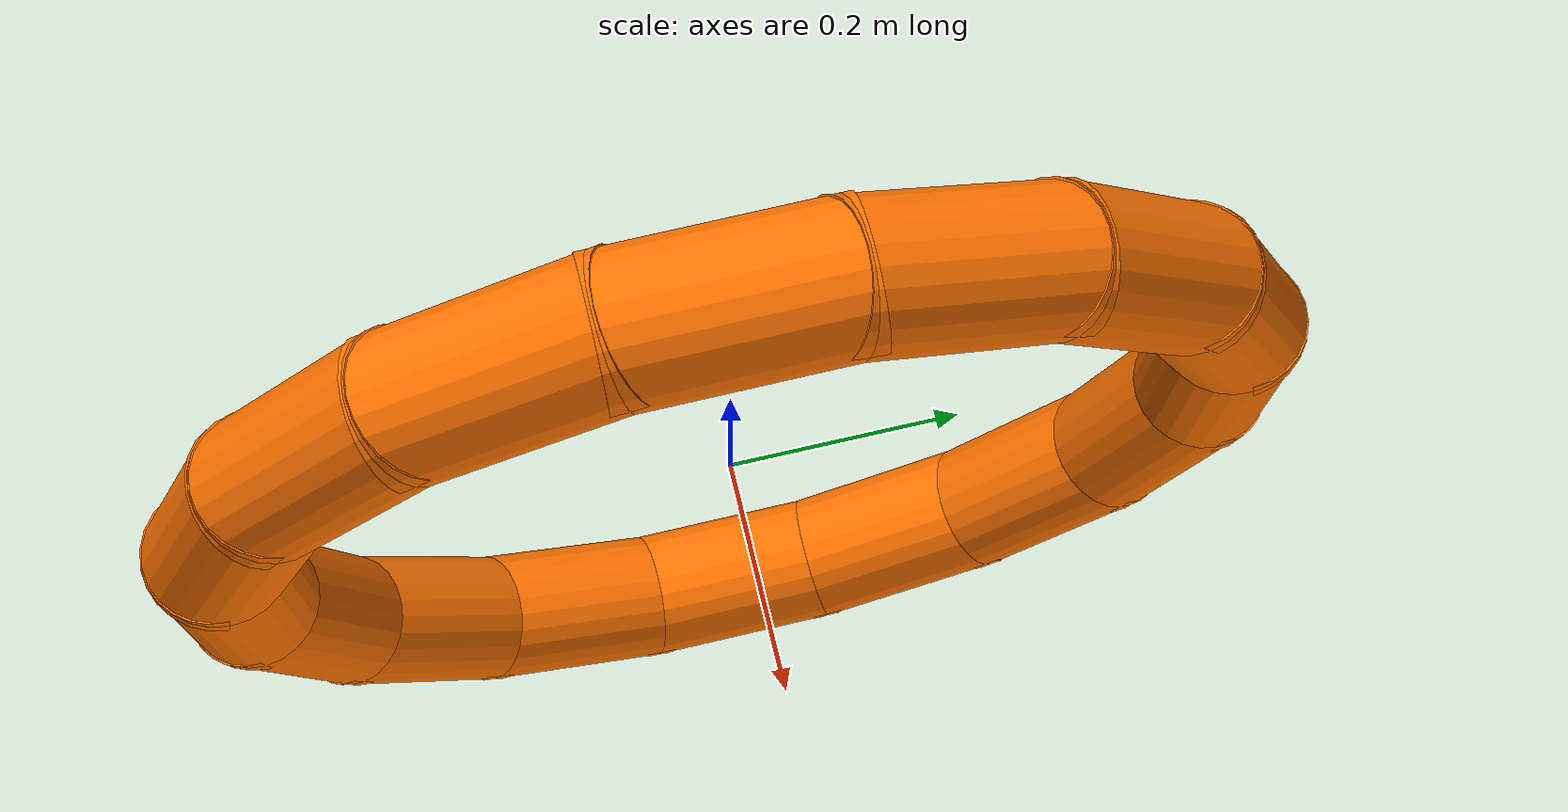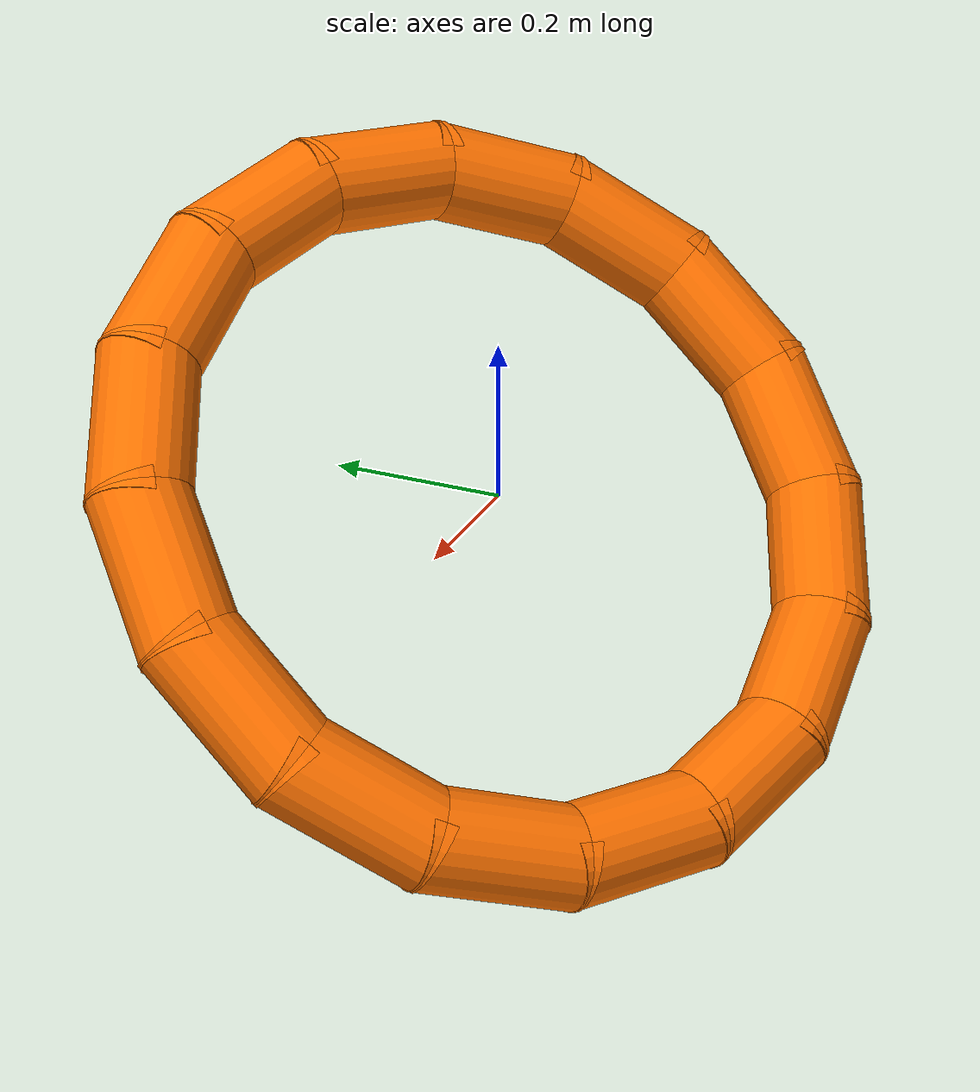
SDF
<?xml version="1.0" ?>
<sdf version="1.9">
  <model name="gate_ring">
    <static>true</static>
    <link name="ring">
      <visual name="seg_0">
        <pose>0 0.4310 0.0000 0.0000 0 0</pose>
        <geometry><cylinder><radius>0.06</radius><length>0.20</length></cylinder></geometry>
        <material><ambient>1 0.45 0 1</ambient><diffuse>1 0.45 0 1</diffuse><emissive>1 0.45 0 1</emissive></material>
      </visual>
      <collision name="seg_0_collision">
        <pose>0 0.4310 0.0000 0.0000 0 0</pose>
        <geometry><cylinder><radius>0.06</radius><length>0.20</length></cylinder></geometry>
      </collision>
      <visual name="seg_1">
        <pose>0 0.3982 0.1649 0.3927 0 0</pose>
        <geometry><cylinder><radius>0.06</radius><length>0.20</length></cylinder></geometry>
        <material><ambient>1 0.45 0 1</ambient><diffuse>1 0.45 0 1</diffuse><emissive>1 0.45 0 1</emissive></material>
      </visual>
      <collision name="seg_1_collision">
        <pose>0 0.3982 0.1649 0.3927 0 0</pose>
        <geometry><cylinder><radius>0.06</radius><length>0.20</length></cylinder></geometry>
      </collision>
      <visual name="seg_2">
        <pose>0 0.3048 0.3048 0.7854 0 0</pose>
        <geometry><cylinder><radius>0.06</radius><length>0.20</length></cylinder></geometry>
        <material><ambient>1 0.45 0 1</ambient><diffuse>1 0.45 0 1</diffuse><emissive>1 0.45 0 1</emissive></material>
      </visual>
      <collision name="seg_2_collision">
        <pose>0 0.3048 0.3048 0.7854 0 0</pose>
        <geometry><cylinder><radius>0.06</radius><length>0.20</length></cylinder></geometry>
      </collision>
      <visual name="seg_3">
        <pose>0 0.1649 0.3982 1.1781 0 0</pose>
        <geometry><cylinder><radius>0.06</radius><length>0.20</length></cylinder></geometry>
        <material><ambient>1 0.45 0 1</ambient><diffuse>1 0.45 0 1</diffuse><emissive>1 0.45 0 1</emissive></material>
      </visual>
      <collision name="seg_3_collision">
        <pose>0 0.1649 0.3982 1.1781 0 0</pose>
        <geometry><cylinder><radius>0.06</radius><length>0.20</length></cylinder></geometry>
      </collision>
      <visual name="seg_4">
        <pose>0 0.0000 0.4310 1.5708 0 0</pose>
        <geometry><cylinder><radius>0.06</radius><length>0.20</length></cylinder></geometry>
        <material><ambient>1 0.45 0 1</ambient><diffuse>1 0.45 0 1</diffuse><emissive>1 0.45 0 1</emissive></material>
      </visual>
      <collision name="seg_4_collision">
        <pose>0 0.0000 0.4310 1.5708 0 0</pose>
        <geometry><cylinder><radius>0.06</radius><length>0.20</length></cylinder></geometry>
      </collision>
      <visual name="seg_5">
        <pose>0 -0.1649 0.3982 1.9635 0 0</pose>
        <geometry><cylinder><radius>0.06</radius><length>0.20</length></cylinder></geometry>
        <material><ambient>1 0.45 0 1</ambient><diffuse>1 0.45 0 1</diffuse><emissive>1 0.45 0 1</emissive></material>
      </visual>
      <collision name="seg_5_collision">
        <pose>0 -0.1649 0.3982 1.9635 0 0</pose>
        <geometry><cylinder><radius>0.06</radius><length>0.20</length></cylinder></geometry>
      </collision>
      <visual name="seg_6">
        <pose>0 -0.3048 0.3048 2.3562 0 0</pose>
        <geometry><cylinder><radius>0.06</radius><length>0.20</length></cylinder></geometry>
        <material><ambient>1 0.45 0 1</ambient><diffuse>1 0.45 0 1</diffuse><emissive>1 0.45 0 1</emissive></material>
      </visual>
      <collision name="seg_6_collision">
        <pose>0 -0.3048 0.3048 2.3562 0 0</pose>
        <geometry><cylinder><radius>0.06</radius><length>0.20</length></cylinder></geometry>
      </collision>
      <visual name="seg_7">
        <pose>0 -0.3982 0.1649 2.7489 0 0</pose>
        <geometry><cylinder><radius>0.06</radius><length>0.20</length></cylinder></geometry>
        <material><ambient>1 0.45 0 1</ambient><diffuse>1 0.45 0 1</diffuse><emissive>1 0.45 0 1</emissive></material>
      </visual>
      <collision name="seg_7_collision">
        <pose>0 -0.3982 0.1649 2.7489 0 0</pose>
        <geometry><cylinder><radius>0.06</radius><length>0.20</length></cylinder></geometry>
      </collision>
      <visual name="seg_8">
        <pose>0 -0.4310 0.0000 3.1416 0 0</pose>
        <geometry><cylinder><radius>0.06</radius><length>0.20</length></cylinder></geometry>
        <material><ambient>1 0.45 0 1</ambient><diffuse>1 0.45 0 1</diffuse><emissive>1 0.45 0 1</emissive></material>
      </visual>
      <collision name="seg_8_collision">
        <pose>0 -0.4310 0.0000 3.1416 0 0</pose>
        <geometry><cylinder><radius>0.06</radius><length>0.20</length></cylinder></geometry>
      </collision>
      <visual name="seg_9">
        <pose>0 -0.3982 -0.1649 3.5343 0 0</pose>
        <geometry><cylinder><radius>0.06</radius><length>0.20</length></cylinder></geometry>
        <material><ambient>1 0.45 0 1</ambient><diffuse>1 0.45 0 1</diffuse><emissive>1 0.45 0 1</emissive></material>
      </visual>
      <collision name="seg_9_collision">
        <pose>0 -0.3982 -0.1649 3.5343 0 0</pose>
        <geometry><cylinder><radius>0.06</radius><length>0.20</length></cylinder></geometry>
      </collision>
      <visual name="seg_10">
        <pose>0 -0.3048 -0.3048 3.9270 0 0</pose>
        <geometry><cylinder><radius>0.06</radius><length>0.20</length></cylinder></geometry>
        <material><ambient>1 0.45 0 1</ambient><diffuse>1 0.45 0 1</diffuse><emissive>1 0.45 0 1</emissive></material>
      </visual>
      <collision name="seg_10_collision">
        <pose>0 -0.3048 -0.3048 3.9270 0 0</pose>
        <geometry><cylinder><radius>0.06</radius><length>0.20</length></cylinder></geometry>
      </collision>
      <visual name="seg_11">
        <pose>0 -0.1649 -0.3982 4.3197 0 0</pose>
        <geometry><cylinder><radius>0.06</radius><length>0.20</length></cylinder></geometry>
        <material><ambient>1 0.45 0 1</ambient><diffuse>1 0.45 0 1</diffuse><emissive>1 0.45 0 1</emissive></material>
      </visual>
      <collision name="seg_11_collision">
        <pose>0 -0.1649 -0.3982 4.3197 0 0</pose>
        <geometry><cylinder><radius>0.06</radius><length>0.20</length></cylinder></geometry>
      </collision>
      <visual name="seg_12">
        <pose>0 -0.0000 -0.4310 4.7124 0 0</pose>
        <geometry><cylinder><radius>0.06</radius><length>0.20</length></cylinder></geometry>
        <material><ambient>1 0.45 0 1</ambient><diffuse>1 0.45 0 1</diffuse><emissive>1 0.45 0 1</emissive></material>
      </visual>
      <collision name="seg_12_collision">
        <pose>0 -0.0000 -0.4310 4.7124 0 0</pose>
        <geometry><cylinder><radius>0.06</radius><length>0.20</length></cylinder></geometry>
      </collision>
      <visual name="seg_13">
        <pose>0 0.1649 -0.3982 5.1051 0 0</pose>
        <geometry><cylinder><radius>0.06</radius><length>0.20</length></cylinder></geometry>
        <material><ambient>1 0.45 0 1</ambient><diffuse>1 0.45 0 1</diffuse><emissive>1 0.45 0 1</emissive></material>
      </visual>
      <collision name="seg_13_collision">
        <pose>0 0.1649 -0.3982 5.1051 0 0</pose>
        <geometry><cylinder><radius>0.06</radius><length>0.20</length></cylinder></geometry>
      </collision>
      <visual name="seg_14">
        <pose>0 0.3048 -0.3048 5.4978 0 0</pose>
        <geometry><cylinder><radius>0.06</radius><length>0.20</length></cylinder></geometry>
        <material><ambient>1 0.45 0 1</ambient><diffuse>1 0.45 0 1</diffuse><emissive>1 0.45 0 1</emissive></material>
      </visual>
      <collision name="seg_14_collision">
        <pose>0 0.3048 -0.3048 5.4978 0 0</pose>
        <geometry><cylinder><radius>0.06</radius><length>0.20</length></cylinder></geometry>
      </collision>
      <visual name="seg_15">
        <pose>0 0.3982 -0.1649 5.8905 0 0</pose>
        <geometry><cylinder><radius>0.06</radius><length>0.20</length></cylinder></geometry>
        <material><ambient>1 0.45 0 1</ambient><diffuse>1 0.45 0 1</diffuse><emissive>1 0.45 0 1</emissive></material>
      </visual>
      <collision name="seg_15_collision">
        <pose>0 0.3982 -0.1649 5.8905 0 0</pose>
        <geometry><cylinder><radius>0.06</radius><length>0.20</length></cylinder></geometry>
      </collision>
    </link>
  </model>
</sdf>
